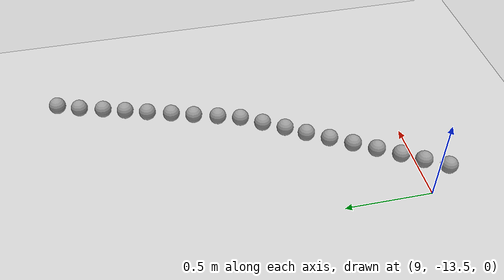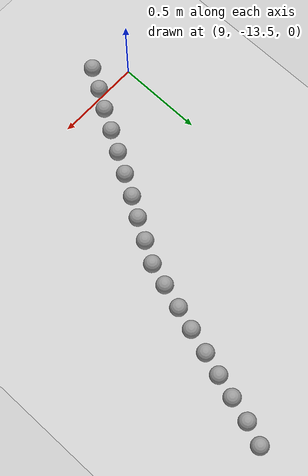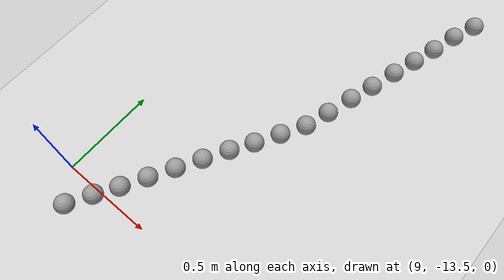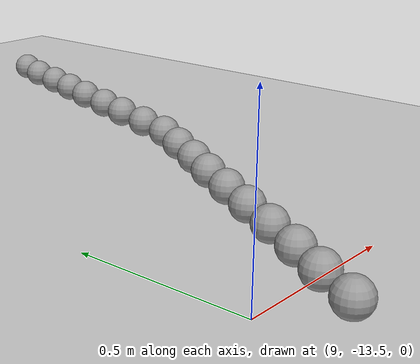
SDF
<sdf version="1.6">
 <world name="default">
  <model name="ground_plane">
   <static>1</static>
   <link name="link">
    <collision name="collision">
     <geometry><plane><normal>0 0 1</normal><size>100 100</size></plane></geometry>
     <surface><friction><ode><mu>100</mu><mu2>50</mu2></ode></friction></surface>
    </collision>
    <visual name="visual">
     <cast_shadows>0</cast_shadows>
     <geometry><plane><normal>0 0 1</normal><size>100 100</size></plane></geometry>
     <material>
      <script><uri>file://media/materials/scripts/gazebo.material</uri><name>Gazebo/Grey</name></script>
     </material>
    </visual>
   </link>
  </model>
  <model name="unit_sphere_0_502">
   <pose>10.110000 -11.520000 0.050000 0 -0 0</pose>
   <link name="link">
    <inertial>
     <mass>1</mass>
     <inertia><ixx>0.1</ixx><ixy>0</ixy><ixz>0</ixz><iyy>0.1</iyy><iyz>0</iyz><izz>0.1</izz></inertia>
    </inertial>
    <collision name="collision"><geometry><sphere><radius>0.050000</radius></sphere></geometry></collision>
    <visual name="visual">
     <geometry><sphere><radius>0.050000</radius></sphere></geometry>
     <material>
      <script><name>Gazebo/Grey</name><uri>file://media/materials/scripts/gazebo.material</uri></script>
     </material>
    </visual>
   </link>
  </model>
  <model name="unit_sphere_0_503">
   <pose>10.060000 -11.650000 0.050000 0 -0 0</pose>
   <link name="link">
    <inertial>
     <mass>1</mass>
     <inertia><ixx>0.1</ixx><ixy>0</ixy><ixz>0</ixz><iyy>0.1</iyy><iyz>0</iyz><izz>0.1</izz></inertia>
    </inertial>
    <collision name="collision"><geometry><sphere><radius>0.050000</radius></sphere></geometry></collision>
    <visual name="visual">
     <geometry><sphere><radius>0.050000</radius></sphere></geometry>
     <material>
      <script><name>Gazebo/Grey</name><uri>file://media/materials/scripts/gazebo.material</uri></script>
     </material>
    </visual>
   </link>
  </model>
  <model name="unit_sphere_0_504">
   <pose>10.020000 -11.790000 0.050000 0 -0 0</pose>
   <link name="link">
    <inertial>
     <mass>1</mass>
     <inertia><ixx>0.1</ixx><ixy>0</ixy><ixz>0</ixz><iyy>0.1</iyy><iyz>0</iyz><izz>0.1</izz></inertia>
    </inertial>
    <collision name="collision"><geometry><sphere><radius>0.050000</radius></sphere></geometry></collision>
    <visual name="visual">
     <geometry><sphere><radius>0.050000</radius></sphere></geometry>
     <material>
      <script><name>Gazebo/Grey</name><uri>file://media/materials/scripts/gazebo.material</uri></script>
     </material>
    </visual>
   </link>
  </model>
  <model name="unit_sphere_0_505">
   <pose>9.980000 -11.920000 0.050000 0 -0 0</pose>
   <link name="link">
    <inertial>
     <mass>1</mass>
     <inertia><ixx>0.1</ixx><ixy>0</ixy><ixz>0</ixz><iyy>0.1</iyy><iyz>0</iyz><izz>0.1</izz></inertia>
    </inertial>
    <collision name="collision"><geometry><sphere><radius>0.050000</radius></sphere></geometry></collision>
    <visual name="visual">
     <geometry><sphere><radius>0.050000</radius></sphere></geometry>
     <material>
      <script><name>Gazebo/Grey</name><uri>file://media/materials/scripts/gazebo.material</uri></script>
     </material>
    </visual>
   </link>
  </model>
  <model name="unit_sphere_0_506">
   <pose>9.938000 -12.050000 0.050000 0 -0 0</pose>
   <link name="link">
    <inertial>
     <mass>1</mass>
     <inertia><ixx>0.1</ixx><ixy>0</ixy><ixz>0</ixz><iyy>0.1</iyy><iyz>0</iyz><izz>0.1</izz></inertia>
    </inertial>
    <collision name="collision"><geometry><sphere><radius>0.050000</radius></sphere></geometry></collision>
    <visual name="visual">
     <geometry><sphere><radius>0.050000</radius></sphere></geometry>
     <material>
      <script><name>Gazebo/Grey</name><uri>file://media/materials/scripts/gazebo.material</uri></script>
     </material>
    </visual>
   </link>
  </model>
  <model name="unit_sphere_0_507">
   <pose>9.896000 -12.190000 0.050000 0 -0 0</pose>
   <link name="link">
    <inertial>
     <mass>1</mass>
     <inertia><ixx>0.1</ixx><ixy>0</ixy><ixz>0</ixz><iyy>0.1</iyy><iyz>0</iyz><izz>0.1</izz></inertia>
    </inertial>
    <collision name="collision"><geometry><sphere><radius>0.050000</radius></sphere></geometry></collision>
    <visual name="visual">
     <geometry><sphere><radius>0.050000</radius></sphere></geometry>
     <material>
      <script><name>Gazebo/Grey</name><uri>file://media/materials/scripts/gazebo.material</uri></script>
     </material>
    </visual>
   </link>
  </model>
  <model name="unit_sphere_0_508">
   <pose>9.854000 -12.320000 0.050000 0 -0 0</pose>
   <link name="link">
    <inertial>
     <mass>1</mass>
     <inertia><ixx>0.1</ixx><ixy>0</ixy><ixz>0</ixz><iyy>0.1</iyy><iyz>0</iyz><izz>0.1</izz></inertia>
    </inertial>
    <collision name="collision"><geometry><sphere><radius>0.050000</radius></sphere></geometry></collision>
    <visual name="visual">
     <geometry><sphere><radius>0.050000</radius></sphere></geometry>
     <material>
      <script><name>Gazebo/Grey</name><uri>file://media/materials/scripts/gazebo.material</uri></script>
     </material>
    </visual>
   </link>
  </model>
  <model name="unit_sphere_0_509">
   <pose>9.812000 -12.460000 0.050000 0 -0 0</pose>
   <link name="link">
    <inertial>
     <mass>1</mass>
     <inertia><ixx>0.1</ixx><ixy>0</ixy><ixz>0</ixz><iyy>0.1</iyy><iyz>0</iyz><izz>0.1</izz></inertia>
    </inertial>
    <collision name="collision"><geometry><sphere><radius>0.050000</radius></sphere></geometry></collision>
    <visual name="visual">
     <geometry><sphere><radius>0.050000</radius></sphere></geometry>
     <material>
      <script><name>Gazebo/Grey</name><uri>file://media/materials/scripts/gazebo.material</uri></script>
     </material>
    </visual>
   </link>
  </model>
  <model name="unit_sphere_0_510">
   <pose>9.770000 -12.590000 0.050000 0 -0 0</pose>
   <link name="link">
    <inertial>
     <mass>1</mass>
     <inertia><ixx>0.1</ixx><ixy>0</ixy><ixz>0</ixz><iyy>0.1</iyy><iyz>0</iyz><izz>0.1</izz></inertia>
    </inertial>
    <collision name="collision"><geometry><sphere><radius>0.050000</radius></sphere></geometry></collision>
    <visual name="visual">
     <geometry><sphere><radius>0.050000</radius></sphere></geometry>
     <material>
      <script><name>Gazebo/Grey</name><uri>file://media/materials/scripts/gazebo.material</uri></script>
     </material>
    </visual>
   </link>
  </model>
  <model name="unit_sphere_0_511">
   <pose>9.700000 -12.710000 0.050000 0 -0 0</pose>
   <link name="link">
    <inertial>
     <mass>1</mass>
     <inertia><ixx>0.1</ixx><ixy>0</ixy><ixz>0</ixz><iyy>0.1</iyy><iyz>0</iyz><izz>0.1</izz></inertia>
    </inertial>
    <collision name="collision"><geometry><sphere><radius>0.050000</radius></sphere></geometry></collision>
    <visual name="visual">
     <geometry><sphere><radius>0.050000</radius></sphere></geometry>
     <material>
      <script><name>Gazebo/Grey</name><uri>file://media/materials/scripts/gazebo.material</uri></script>
     </material>
    </visual>
   </link>
  </model>
  <model name="unit_sphere_0_512">
   <pose>9.630000 -12.830000 0.050000 0 -0 0</pose>
   <link name="link">
    <inertial>
     <mass>1</mass>
     <inertia><ixx>0.1</ixx><ixy>0</ixy><ixz>0</ixz><iyy>0.1</iyy><iyz>0</iyz><izz>0.1</izz></inertia>
    </inertial>
    <collision name="collision"><geometry><sphere><radius>0.050000</radius></sphere></geometry></collision>
    <visual name="visual">
     <geometry><sphere><radius>0.050000</radius></sphere></geometry>
     <material>
      <script><name>Gazebo/Grey</name><uri>file://media/materials/scripts/gazebo.material</uri></script>
     </material>
    </visual>
   </link>
  </model>
  <model name="unit_sphere_0_513">
   <pose>9.560000 -12.940000 0.050000 0 -0 0</pose>
   <link name="link">
    <inertial>
     <mass>1</mass>
     <inertia><ixx>0.1</ixx><ixy>0</ixy><ixz>0</ixz><iyy>0.1</iyy><iyz>0</iyz><izz>0.1</izz></inertia>
    </inertial>
    <collision name="collision"><geometry><sphere><radius>0.050000</radius></sphere></geometry></collision>
    <visual name="visual">
     <geometry><sphere><radius>0.050000</radius></sphere></geometry>
     <material>
      <script><name>Gazebo/Grey</name><uri>file://media/materials/scripts/gazebo.material</uri></script>
     </material>
    </visual>
   </link>
  </model>
  <model name="unit_sphere_0_514">
   <pose>9.490000 -13.060000 0.050000 0 -0 0</pose>
   <link name="link">
    <inertial>
     <mass>1</mass>
     <inertia><ixx>0.1</ixx><ixy>0</ixy><ixz>0</ixz><iyy>0.1</iyy><iyz>0</iyz><izz>0.1</izz></inertia>
    </inertial>
    <collision name="collision"><geometry><sphere><radius>0.050000</radius></sphere></geometry></collision>
    <visual name="visual">
     <geometry><sphere><radius>0.050000</radius></sphere></geometry>
     <material>
      <script><name>Gazebo/Grey</name><uri>file://media/materials/scripts/gazebo.material</uri></script>
     </material>
    </visual>
   </link>
  </model>
  <model name="unit_sphere_0_515">
   <pose>9.420000 -13.180000 0.050000 0 -0 0</pose>
   <link name="link">
    <inertial>
     <mass>1</mass>
     <inertia><ixx>0.1</ixx><ixy>0</ixy><ixz>0</ixz><iyy>0.1</iyy><iyz>0</iyz><izz>0.1</izz></inertia>
    </inertial>
    <collision name="collision"><geometry><sphere><radius>0.050000</radius></sphere></geometry></collision>
    <visual name="visual">
     <geometry><sphere><radius>0.050000</radius></sphere></geometry>
     <material>
      <script><name>Gazebo/Grey</name><uri>file://media/materials/scripts/gazebo.material</uri></script>
     </material>
    </visual>
   </link>
  </model>
  <model name="unit_sphere_0_516">
   <pose>9.350000 -13.300000 0.050000 0 -0 0</pose>
   <link name="link">
    <inertial>
     <mass>1</mass>
     <inertia><ixx>0.1</ixx><ixy>0</ixy><ixz>0</ixz><iyy>0.1</iyy><iyz>0</iyz><izz>0.1</izz></inertia>
    </inertial>
    <collision name="collision"><geometry><sphere><radius>0.050000</radius></sphere></geometry></collision>
    <visual name="visual">
     <geometry><sphere><radius>0.050000</radius></sphere></geometry>
     <material>
      <script><name>Gazebo/Grey</name><uri>file://media/materials/scripts/gazebo.material</uri></script>
     </material>
    </visual>
   </link>
  </model>
  <model name="unit_sphere_0_517">
   <pose>9.280000 -13.420000 0.050000 0 -0 0</pose>
   <link name="link">
    <inertial>
     <mass>1</mass>
     <inertia><ixx>0.1</ixx><ixy>0</ixy><ixz>0</ixz><iyy>0.1</iyy><iyz>0</iyz><izz>0.1</izz></inertia>
    </inertial>
    <collision name="collision"><geometry><sphere><radius>0.050000</radius></sphere></geometry></collision>
    <visual name="visual">
     <geometry><sphere><radius>0.050000</radius></sphere></geometry>
     <material>
      <script><name>Gazebo/Grey</name><uri>file://media/materials/scripts/gazebo.material</uri></script>
     </material>
    </visual>
   </link>
  </model>
  <model name="unit_sphere_0_518">
   <pose>9.210000 -13.530000 0.050000 0 -0 0</pose>
   <link name="link">
    <inertial>
     <mass>1</mass>
     <inertia><ixx>0.1</ixx><ixy>0</ixy><ixz>0</ixz><iyy>0.1</iyy><iyz>0</iyz><izz>0.1</izz></inertia>
    </inertial>
    <collision name="collision"><geometry><sphere><radius>0.050000</radius></sphere></geometry></collision>
    <visual name="visual">
     <geometry><sphere><radius>0.050000</radius></sphere></geometry>
     <material>
      <script><name>Gazebo/Grey</name><uri>file://media/materials/scripts/gazebo.material</uri></script>
     </material>
    </visual>
   </link>
  </model>
  <model name="unit_sphere_0_519">
   <pose>9.140000 -13.650000 0.050000 0 -0 0</pose>
   <link name="link">
    <inertial>
     <mass>1</mass>
     <inertia><ixx>0.1</ixx><ixy>0</ixy><ixz>0</ixz><iyy>0.1</iyy><iyz>0</iyz><izz>0.1</izz></inertia>
    </inertial>
    <collision name="collision"><geometry><sphere><radius>0.050000</radius></sphere></geometry></collision>
    <visual name="visual">
     <geometry><sphere><radius>0.050000</radius></sphere></geometry>
     <material>
      <script><name>Gazebo/Grey</name><uri>file://media/materials/scripts/gazebo.material</uri></script>
     </material>
    </visual>
   </link>
  </model>
 </world>
</sdf>
